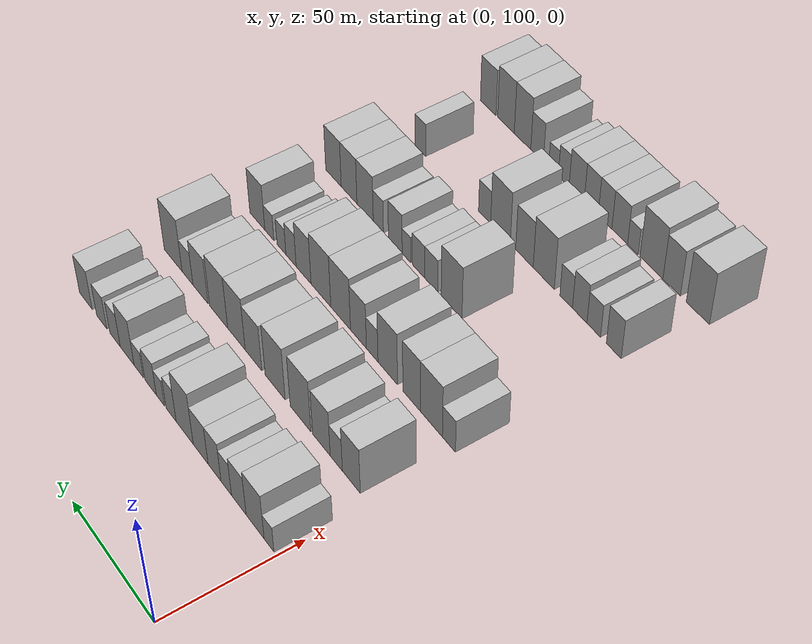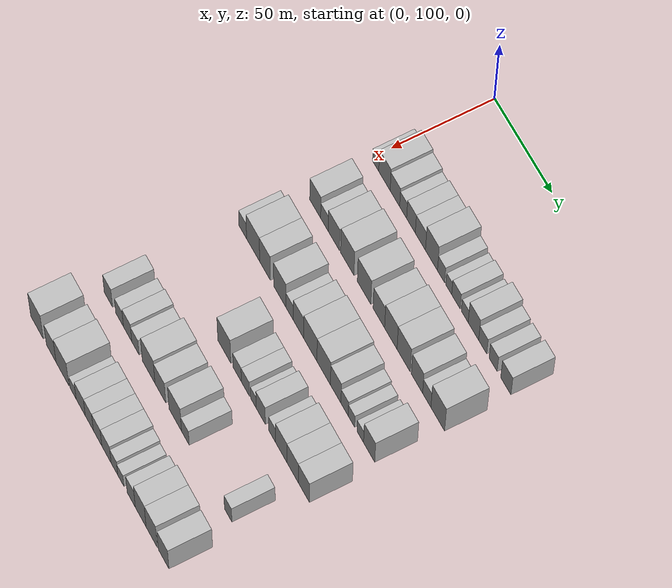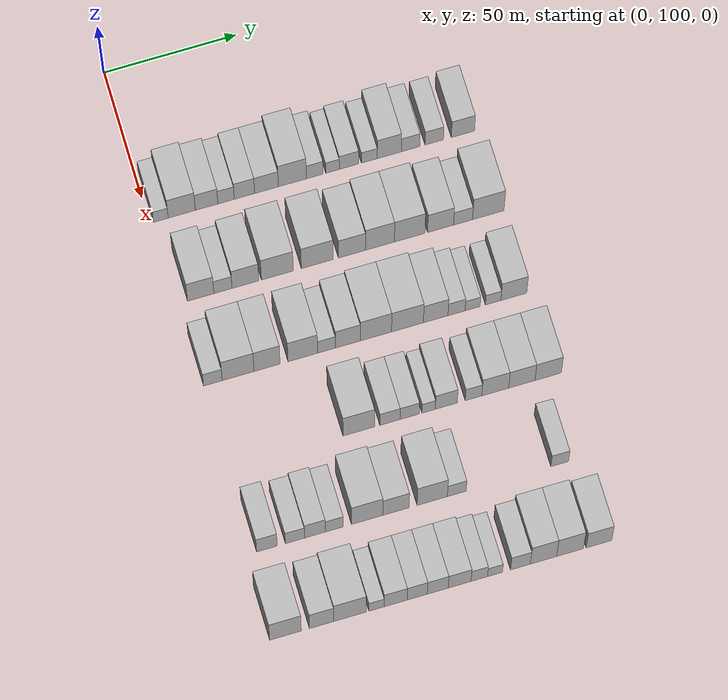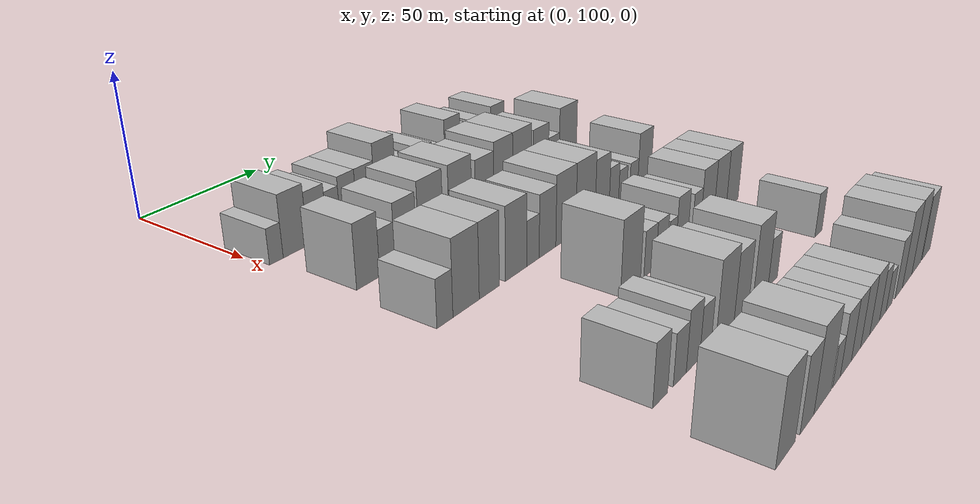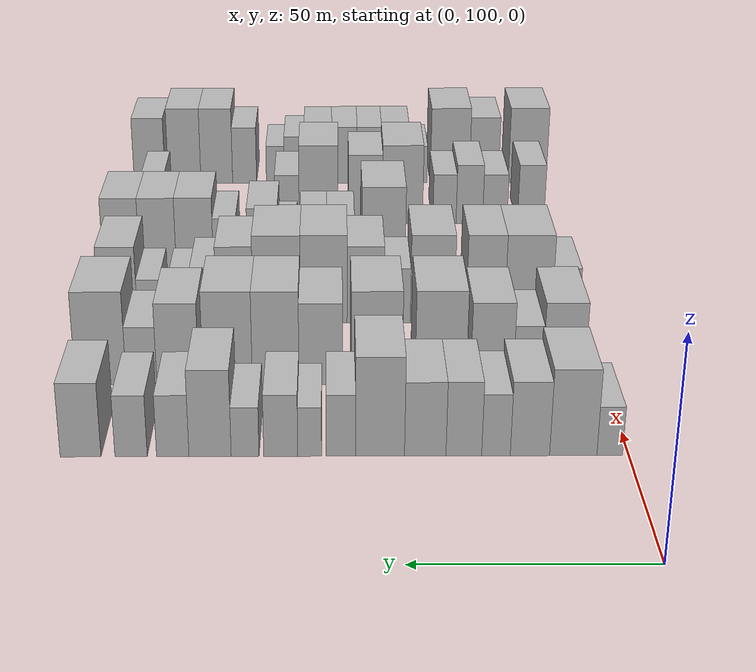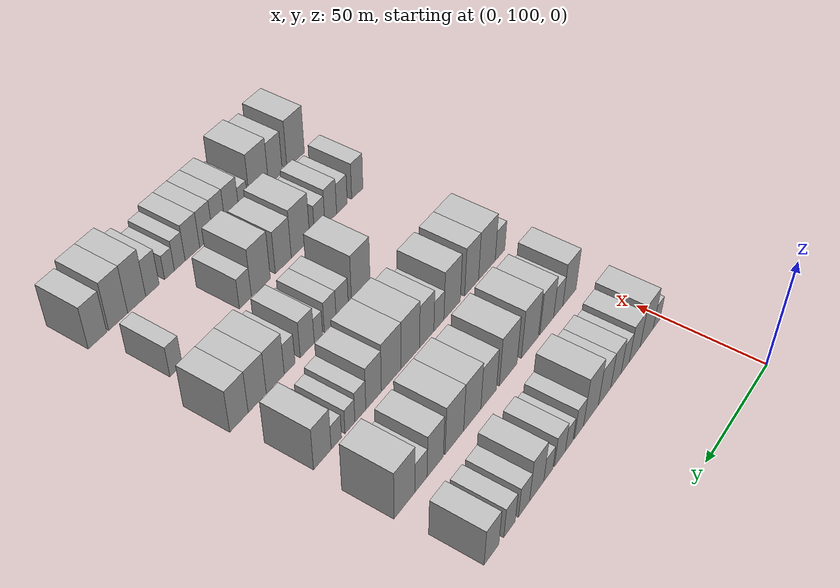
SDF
<sdf version="1.6">
 <world name="default">
  <model name="building_70">
   <static>1</static>
   <pose>50.0000 104.2377 0 0.000000 0.000000 0.000000</pose>
   <link name="link">
    <pose>0 0 6.00 0 0 0</pose>
    <collision name="collision"><geometry><box><size>20.0000 5.5310 12.0000</size></box></geometry></collision>
    <visual name="visual">
     <cast_shadows>0</cast_shadows>
     <geometry><box><size>20.0000 5.5310 12.0000</size></box></geometry>
     <material>
      <script>
       <uri>model://HANNAS_wall/materials/scripts</uri>
       <uri>model://HANNAS_wall/materials/textures</uri>
       <name>vrc/HANNAS_wall</name>
      </script>
     </material>
    </visual>
   </link>
  </model>
  <model name="building_71">
   <static>1</static>
   <pose>50.0000 112.1027 0 0.000000 0.000000 0.000000</pose>
   <link name="link">
    <pose>0 0 10.50 0 0 0</pose>
    <collision name="collision"><geometry><box><size>20.0000 10.1990 21.0000</size></box></geometry></collision>
    <visual name="visual">
     <cast_shadows>0</cast_shadows>
     <geometry><box><size>20.0000 10.1990 21.0000</size></box></geometry>
     <material>
      <script>
       <uri>model://HANNAS_wall/materials/scripts</uri>
       <uri>model://HANNAS_wall/materials/textures</uri>
       <name>vrc/HANNAS_wall</name>
      </script>
     </material>
    </visual>
   </link>
  </model>
  <model name="building_72">
   <static>1</static>
   <pose>50.0000 121.4422 0 0.000000 0.000000 0.000000</pose>
   <link name="link">
    <pose>0 0 9.00 0 0 0</pose>
    <collision name="collision"><geometry><box><size>20.0000 8.4801 18.0000</size></box></geometry></collision>
    <visual name="visual">
     <cast_shadows>0</cast_shadows>
     <geometry><box><size>20.0000 8.4801 18.0000</size></box></geometry>
     <material>
      <script>
       <uri>model://HANNAS_wall/materials/scripts</uri>
       <uri>model://HANNAS_wall/materials/textures</uri>
       <name>vrc/HANNAS_wall</name>
      </script>
     </material>
    </visual>
   </link>
  </model>
  <model name="building_73">
   <static>1</static>
   <pose>50.0000 128.7639 0 0.000000 0.000000 0.000000</pose>
   <link name="link">
    <pose>0 0 7.50 0 0 0</pose>
    <collision name="collision"><geometry><box><size>20.0000 6.1633 15.0000</size></box></geometry></collision>
    <visual name="visual">
     <cast_shadows>0</cast_shadows>
     <geometry><box><size>20.0000 6.1633 15.0000</size></box></geometry>
     <material>
      <script>
       <uri>model://HANNAS_wall/materials/scripts</uri>
       <uri>model://HANNAS_wall/materials/textures</uri>
       <name>vrc/HANNAS_wall</name>
      </script>
     </material>
    </visual>
   </link>
  </model>
  <model name="building_74">
   <static>1</static>
   <pose>50.0000 135.6921 0 0.000000 0.000000 0.000000</pose>
   <link name="link">
    <pose>0 0 9.00 0 0 0</pose>
    <collision name="collision"><geometry><box><size>20.0000 7.6930 18.0000</size></box></geometry></collision>
    <visual name="visual">
     <cast_shadows>0</cast_shadows>
     <geometry><box><size>20.0000 7.6930 18.0000</size></box></geometry>
     <material>
      <script>
       <uri>model://HANNAS_wall/materials/scripts</uri>
       <uri>model://HANNAS_wall/materials/textures</uri>
       <name>vrc/HANNAS_wall</name>
      </script>
     </material>
    </visual>
   </link>
  </model>
  <model name="building_75">
   <static>1</static>
   <pose>50.0000 144.0087 0 0.000000 0.000000 0.000000</pose>
   <link name="link">
    <pose>0 0 9.00 0 0 0</pose>
    <collision name="collision"><geometry><box><size>20.0000 8.9403 18.0000</size></box></geometry></collision>
    <visual name="visual">
     <cast_shadows>0</cast_shadows>
     <geometry><box><size>20.0000 8.9403 18.0000</size></box></geometry>
     <material>
      <script>
       <uri>model://HANNAS_wall/materials/scripts</uri>
       <uri>model://HANNAS_wall/materials/textures</uri>
       <name>vrc/HANNAS_wall</name>
      </script>
     </material>
    </visual>
   </link>
  </model>
  <model name="building_76">
   <static>1</static>
   <pose>50.0000 153.7544 0 0.000000 0.000000 0.000000</pose>
   <link name="link">
    <pose>0 0 12.00 0 0 0</pose>
    <collision name="collision"><geometry><box><size>20.0000 10.5511 24.0000</size></box></geometry></collision>
    <visual name="visual">
     <cast_shadows>0</cast_shadows>
     <geometry><box><size>20.0000 10.5511 24.0000</size></box></geometry>
     <material>
      <script>
       <uri>model://HANNAS_wall/materials/scripts</uri>
       <uri>model://HANNAS_wall/materials/textures</uri>
       <name>vrc/HANNAS_wall</name>
      </script>
     </material>
    </visual>
   </link>
  </model>
  <model name="building_77">
   <static>1</static>
   <pose>50.0000 162.1807 0 0.000000 0.000000 0.000000</pose>
   <link name="link">
    <pose>0 0 7.50 0 0 0</pose>
    <collision name="collision"><geometry><box><size>20.0000 6.3015 15.0000</size></box></geometry></collision>
    <visual name="visual">
     <cast_shadows>0</cast_shadows>
     <geometry><box><size>20.0000 6.3015 15.0000</size></box></geometry>
     <material>
      <script>
       <uri>model://HANNAS_wall/materials/scripts</uri>
       <uri>model://HANNAS_wall/materials/textures</uri>
       <name>vrc/HANNAS_wall</name>
      </script>
     </material>
    </visual>
   </link>
  </model>
  <model name="building_78">
   <static>1</static>
   <pose>50.0000 168.9005 0 0.000000 0.000000 0.000000</pose>
   <link name="link">
    <pose>0 0 6.00 0 0 0</pose>
    <collision name="collision"><geometry><box><size>20.0000 5.1382 12.0000</size></box></geometry></collision>
    <visual name="visual">
     <cast_shadows>0</cast_shadows>
     <geometry><box><size>20.0000 5.1382 12.0000</size></box></geometry>
     <material>
      <script>
       <uri>model://HANNAS_wall/materials/scripts</uri>
       <uri>model://HANNAS_wall/materials/textures</uri>
       <name>vrc/HANNAS_wall</name>
      </script>
     </material>
    </visual>
   </link>
  </model>
  <model name="building_79">
   <static>1</static>
   <pose>50.0000 175.1348 0 0.000000 0.000000 0.000000</pose>
   <link name="link">
    <pose>0 0 7.50 0 0 0</pose>
    <collision name="collision"><geometry><box><size>20.0000 7.3303 15.0000</size></box></geometry></collision>
    <visual name="visual">
     <cast_shadows>0</cast_shadows>
     <geometry><box><size>20.0000 7.3303 15.0000</size></box></geometry>
     <material>
      <script>
       <uri>model://HANNAS_wall/materials/scripts</uri>
       <uri>model://HANNAS_wall/materials/textures</uri>
       <name>vrc/HANNAS_wall</name>
      </script>
     </material>
    </visual>
   </link>
  </model>
  <model name="building_80">
   <static>1</static>
   <pose>50.0000 182.7957 0 0.000000 0.000000 0.000000</pose>
   <link name="link">
    <pose>0 0 6.00 0 0 0</pose>
    <collision name="collision"><geometry><box><size>20.0000 5.9916 12.0000</size></box></geometry></collision>
    <visual name="visual">
     <cast_shadows>0</cast_shadows>
     <geometry><box><size>20.0000 5.9916 12.0000</size></box></geometry>
     <material>
      <script>
       <uri>model://HANNAS_wall/materials/scripts</uri>
       <uri>model://HANNAS_wall/materials/textures</uri>
       <name>vrc/HANNAS_wall</name>
      </script>
     </material>
    </visual>
   </link>
  </model>
  <model name="building_81">
   <static>1</static>
   <pose>50.0000 190.3365 0 0.000000 0.000000 0.000000</pose>
   <link name="link">
    <pose>0 0 10.50 0 0 0</pose>
    <collision name="collision"><geometry><box><size>20.0000 9.0900 21.0000</size></box></geometry></collision>
    <visual name="visual">
     <cast_shadows>0</cast_shadows>
     <geometry><box><size>20.0000 9.0900 21.0000</size></box></geometry>
     <material>
      <script>
       <uri>model://HANNAS_wall/materials/scripts</uri>
       <uri>model://HANNAS_wall/materials/textures</uri>
       <name>vrc/HANNAS_wall</name>
      </script>
     </material>
    </visual>
   </link>
  </model>
  <model name="building_82">
   <static>1</static>
   <pose>50.0000 198.3667 0 0.000000 0.000000 0.000000</pose>
   <link name="link">
    <pose>0 0 7.50 0 0 0</pose>
    <collision name="collision"><geometry><box><size>20.0000 6.9704 15.0000</size></box></geometry></collision>
    <visual name="visual">
     <cast_shadows>0</cast_shadows>
     <geometry><box><size>20.0000 6.9704 15.0000</size></box></geometry>
     <material>
      <script>
       <uri>model://HANNAS_wall/materials/scripts</uri>
       <uri>model://HANNAS_wall/materials/textures</uri>
       <name>vrc/HANNAS_wall</name>
      </script>
     </material>
    </visual>
   </link>
  </model>
  <model name="building_83">
   <static>1</static>
   <pose>50.0000 207.3338 0 0.000000 0.000000 0.000000</pose>
   <link name="link">
    <pose>0 0 7.50 0 0 0</pose>
    <collision name="collision"><geometry><box><size>20.0000 6.9637 15.0000</size></box></geometry></collision>
    <visual name="visual">
     <cast_shadows>0</cast_shadows>
     <geometry><box><size>20.0000 6.9637 15.0000</size></box></geometry>
     <material>
      <script>
       <uri>model://HANNAS_wall/materials/scripts</uri>
       <uri>model://HANNAS_wall/materials/textures</uri>
       <name>vrc/HANNAS_wall</name>
      </script>
     </material>
    </visual>
   </link>
  </model>
  <model name="building_84">
   <static>1</static>
   <pose>50.0000 218.2044 0 0.000000 0.000000 0.000000</pose>
   <link name="link">
    <pose>0 0 9.00 0 0 0</pose>
    <collision name="collision"><geometry><box><size>20.0000 8.7774 18.0000</size></box></geometry></collision>
    <visual name="visual">
     <cast_shadows>0</cast_shadows>
     <geometry><box><size>20.0000 8.7774 18.0000</size></box></geometry>
     <material>
      <script>
       <uri>model://HANNAS_wall/materials/scripts</uri>
       <uri>model://HANNAS_wall/materials/textures</uri>
       <name>vrc/HANNAS_wall</name>
      </script>
     </material>
    </visual>
   </link>
  </model>
  <model name="building_190">
   <static>1</static>
   <pose>82.0000 109.9471 0 0.000000 0.000000 0.000000</pose>
   <link name="link">
    <pose>0 0 10.50 0 0 0</pose>
    <collision name="collision"><geometry><box><size>20.0000 9.8719 21.0000</size></box></geometry></collision>
    <visual name="visual">
     <cast_shadows>0</cast_shadows>
     <geometry><box><size>20.0000 9.8719 21.0000</size></box></geometry>
     <material>
      <script>
       <uri>model://HANNAS_wall/materials/scripts</uri>
       <uri>model://HANNAS_wall/materials/textures</uri>
       <name>vrc/HANNAS_wall</name>
      </script>
     </material>
    </visual>
   </link>
  </model>
  <model name="building_191">
   <static>1</static>
   <pose>82.0000 118.2887 0 0.000000 0.000000 0.000000</pose>
   <link name="link">
    <pose>0 0 7.50 0 0 0</pose>
    <collision name="collision"><geometry><box><size>20.0000 6.8113 15.0000</size></box></geometry></collision>
    <visual name="visual">
     <cast_shadows>0</cast_shadows>
     <geometry><box><size>20.0000 6.8113 15.0000</size></box></geometry>
     <material>
      <script>
       <uri>model://HANNAS_wall/materials/scripts</uri>
       <uri>model://HANNAS_wall/materials/textures</uri>
       <name>vrc/HANNAS_wall</name>
      </script>
     </material>
    </visual>
   </link>
  </model>
  <model name="building_192">
   <static>1</static>
   <pose>82.0000 126.6955 0 0.000000 0.000000 0.000000</pose>
   <link name="link">
    <pose>0 0 10.50 0 0 0</pose>
    <collision name="collision"><geometry><box><size>20.0000 10.0023 21.0000</size></box></geometry></collision>
    <visual name="visual">
     <cast_shadows>0</cast_shadows>
     <geometry><box><size>20.0000 10.0023 21.0000</size></box></geometry>
     <material>
      <script>
       <uri>model://HANNAS_wall/materials/scripts</uri>
       <uri>model://HANNAS_wall/materials/textures</uri>
       <name>vrc/HANNAS_wall</name>
      </script>
     </material>
    </visual>
   </link>
  </model>
  <model name="building_193">
   <static>1</static>
   <pose>82.0000 138.6816 0 0.000000 0.000000 0.000000</pose>
   <link name="link">
    <pose>0 0 12.00 0 0 0</pose>
    <collision name="collision"><geometry><box><size>20.0000 11.9700 24.0000</size></box></geometry></collision>
    <visual name="visual">
     <cast_shadows>0</cast_shadows>
     <geometry><box><size>20.0000 11.9700 24.0000</size></box></geometry>
     <material>
      <script>
       <uri>model://HANNAS_wall/materials/scripts</uri>
       <uri>model://HANNAS_wall/materials/textures</uri>
       <name>vrc/HANNAS_wall</name>
      </script>
     </material>
    </visual>
   </link>
  </model>
  <model name="building_194">
   <static>1</static>
   <pose>82.0000 153.6237 0 0.000000 0.000000 0.000000</pose>
   <link name="link">
    <pose>0 0 12.00 0 0 0</pose>
    <collision name="collision"><geometry><box><size>20.0000 11.9142 24.0000</size></box></geometry></collision>
    <visual name="visual">
     <cast_shadows>0</cast_shadows>
     <geometry><box><size>20.0000 11.9142 24.0000</size></box></geometry>
     <material>
      <script>
       <uri>model://HANNAS_wall/materials/scripts</uri>
       <uri>model://HANNAS_wall/materials/textures</uri>
       <name>vrc/HANNAS_wall</name>
      </script>
     </material>
    </visual>
   </link>
  </model>
  <model name="building_195">
   <static>1</static>
   <pose>82.0000 166.6712 0 0.000000 0.000000 0.000000</pose>
   <link name="link">
    <pose>0 0 10.50 0 0 0</pose>
    <collision name="collision"><geometry><box><size>20.0000 10.1808 21.0000</size></box></geometry></collision>
    <visual name="visual">
     <cast_shadows>0</cast_shadows>
     <geometry><box><size>20.0000 10.1808 21.0000</size></box></geometry>
     <material>
      <script>
       <uri>model://HANNAS_wall/materials/scripts</uri>
       <uri>model://HANNAS_wall/materials/textures</uri>
       <name>vrc/HANNAS_wall</name>
      </script>
     </material>
    </visual>
   </link>
  </model>
  <model name="building_196">
   <static>1</static>
   <pose>82.0000 177.2109 0 0.000000 0.000000 0.000000</pose>
   <link name="link">
    <pose>0 0 12.00 0 0 0</pose>
    <collision name="collision"><geometry><box><size>20.0000 10.8985 24.0000</size></box></geometry></collision>
    <visual name="visual">
     <cast_shadows>0</cast_shadows>
     <geometry><box><size>20.0000 10.8985 24.0000</size></box></geometry>
     <material>
      <script>
       <uri>model://HANNAS_wall/materials/scripts</uri>
       <uri>model://HANNAS_wall/materials/textures</uri>
       <name>vrc/HANNAS_wall</name>
      </script>
     </material>
    </visual>
   </link>
  </model>
  <model name="building_197">
   <static>1</static>
   <pose>82.0000 188.4048 0 0.000000 0.000000 0.000000</pose>
   <link name="link">
    <pose>0 0 12.00 0 0 0</pose>
    <collision name="collision"><geometry><box><size>20.0000 11.4892 24.0000</size></box></geometry></collision>
    <visual name="visual">
     <cast_shadows>0</cast_shadows>
     <geometry><box><size>20.0000 11.4892 24.0000</size></box></geometry>
     <material>
      <script>
       <uri>model://HANNAS_wall/materials/scripts</uri>
       <uri>model://HANNAS_wall/materials/textures</uri>
       <name>vrc/HANNAS_wall</name>
      </script>
     </material>
    </visual>
   </link>
  </model>
  <model name="building_198">
   <static>1</static>
   <pose>82.0000 200.0547 0 0.000000 0.000000 0.000000</pose>
   <link name="link">
    <pose>0 0 10.50 0 0 0</pose>
    <collision name="collision"><geometry><box><size>20.0000 9.8107 21.0000</size></box></geometry></collision>
    <visual name="visual">
     <cast_shadows>0</cast_shadows>
     <geometry><box><size>20.0000 9.8107 21.0000</size></box></geometry>
     <material>
      <script>
       <uri>model://HANNAS_wall/materials/scripts</uri>
       <uri>model://HANNAS_wall/materials/textures</uri>
       <name>vrc/HANNAS_wall</name>
      </script>
     </material>
    </visual>
   </link>
  </model>
  <model name="building_199">
   <static>1</static>
   <pose>82.0000 208.5327 0 0.000000 0.000000 0.000000</pose>
   <link name="link">
    <pose>0 0 7.50 0 0 0</pose>
    <collision name="collision"><geometry><box><size>20.0000 7.1451 15.0000</size></box></geometry></collision>
    <visual name="visual">
     <cast_shadows>0</cast_shadows>
     <geometry><box><size>20.0000 7.1451 15.0000</size></box></geometry>
     <material>
      <script>
       <uri>model://HANNAS_wall/materials/scripts</uri>
       <uri>model://HANNAS_wall/materials/textures</uri>
       <name>vrc/HANNAS_wall</name>
      </script>
     </material>
    </visual>
   </link>
  </model>
  <model name="building_200">
   <static>1</static>
   <pose>82.0000 218.0332 0 0.000000 0.000000 0.000000</pose>
   <link name="link">
    <pose>0 0 12.00 0 0 0</pose>
    <collision name="collision"><geometry><box><size>20.0000 11.8559 24.0000</size></box></geometry></collision>
    <visual name="visual">
     <cast_shadows>0</cast_shadows>
     <geometry><box><size>20.0000 11.8559 24.0000</size></box></geometry>
     <material>
      <script>
       <uri>model://HANNAS_wall/materials/scripts</uri>
       <uri>model://HANNAS_wall/materials/textures</uri>
       <name>vrc/HANNAS_wall</name>
      </script>
     </material>
    </visual>
   </link>
  </model>
  <model name="building_306">
   <static>1</static>
   <pose>114.0000 105.2010 0 0.000000 0.000000 0.000000</pose>
   <link name="link">
    <pose>0 0 7.50 0 0 0</pose>
    <collision name="collision"><geometry><box><size>20.0000 6.9410 15.0000</size></box></geometry></collision>
    <visual name="visual">
     <cast_shadows>0</cast_shadows>
     <geometry><box><size>20.0000 6.9410 15.0000</size></box></geometry>
     <material>
      <script>
       <uri>model://HANNAS_wall/materials/scripts</uri>
       <uri>model://HANNAS_wall/materials/textures</uri>
       <name>vrc/HANNAS_wall</name>
      </script>
     </material>
    </visual>
   </link>
  </model>
  <model name="building_307">
   <static>1</static>
   <pose>114.0000 114.6307 0 0.000000 0.000000 0.000000</pose>
   <link name="link">
    <pose>0 0 12.00 0 0 0</pose>
    <collision name="collision"><geometry><box><size>20.0000 11.9185 24.0000</size></box></geometry></collision>
    <visual name="visual">
     <cast_shadows>0</cast_shadows>
     <geometry><box><size>20.0000 11.9185 24.0000</size></box></geometry>
     <material>
      <script>
       <uri>model://HANNAS_wall/materials/scripts</uri>
       <uri>model://HANNAS_wall/materials/textures</uri>
       <name>vrc/HANNAS_wall</name>
      </script>
     </material>
    </visual>
   </link>
  </model>
  <model name="building_308">
   <static>1</static>
   <pose>114.0000 125.4257 0 0.000000 0.000000 0.000000</pose>
   <link name="link">
    <pose>0 0 12.00 0 0 0</pose>
    <collision name="collision"><geometry><box><size>20.0000 9.6714 24.0000</size></box></geometry></collision>
    <visual name="visual">
     <cast_shadows>0</cast_shadows>
     <geometry><box><size>20.0000 9.6714 24.0000</size></box></geometry>
     <material>
      <script>
       <uri>model://HANNAS_wall/materials/scripts</uri>
       <uri>model://HANNAS_wall/materials/textures</uri>
       <name>vrc/HANNAS_wall</name>
      </script>
     </material>
    </visual>
   </link>
  </model>
  <model name="building_309">
   <static>1</static>
   <pose>114.0000 138.7803 0 0.000000 0.000000 0.000000</pose>
   <link name="link">
    <pose>0 0 12.00 0 0 0</pose>
    <collision name="collision"><geometry><box><size>20.0000 11.0379 24.0000</size></box></geometry></collision>
    <visual name="visual">
     <cast_shadows>0</cast_shadows>
     <geometry><box><size>20.0000 11.0379 24.0000</size></box></geometry>
     <material>
      <script>
       <uri>model://HANNAS_wall/materials/scripts</uri>
       <uri>model://HANNAS_wall/materials/textures</uri>
       <name>vrc/HANNAS_wall</name>
      </script>
     </material>
    </visual>
   </link>
  </model>
  <model name="building_310">
   <static>1</static>
   <pose>114.0000 147.6210 0 0.000000 0.000000 0.000000</pose>
   <link name="link">
    <pose>0 0 7.50 0 0 0</pose>
    <collision name="collision"><geometry><box><size>20.0000 6.6434 15.0000</size></box></geometry></collision>
    <visual name="visual">
     <cast_shadows>0</cast_shadows>
     <geometry><box><size>20.0000 6.6434 15.0000</size></box></geometry>
     <material>
      <script>
       <uri>model://HANNAS_wall/materials/scripts</uri>
       <uri>model://HANNAS_wall/materials/textures</uri>
       <name>vrc/HANNAS_wall</name>
      </script>
     </material>
    </visual>
   </link>
  </model>
  <model name="building_311">
   <static>1</static>
   <pose>114.0000 155.5889 0 0.000000 0.000000 0.000000</pose>
   <link name="link">
    <pose>0 0 10.50 0 0 0</pose>
    <collision name="collision"><geometry><box><size>20.0000 9.2924 21.0000</size></box></geometry></collision>
    <visual name="visual">
     <cast_shadows>0</cast_shadows>
     <geometry><box><size>20.0000 9.2924 21.0000</size></box></geometry>
     <material>
      <script>
       <uri>model://HANNAS_wall/materials/scripts</uri>
       <uri>model://HANNAS_wall/materials/textures</uri>
       <name>vrc/HANNAS_wall</name>
      </script>
     </material>
    </visual>
   </link>
  </model>
  <model name="building_312">
   <static>1</static>
   <pose>114.0000 166.0883 0 0.000000 0.000000 0.000000</pose>
   <link name="link">
    <pose>0 0 12.00 0 0 0</pose>
    <collision name="collision"><geometry><box><size>20.0000 11.7065 24.0000</size></box></geometry></collision>
    <visual name="visual">
     <cast_shadows>0</cast_shadows>
     <geometry><box><size>20.0000 11.7065 24.0000</size></box></geometry>
     <material>
      <script>
       <uri>model://HANNAS_wall/materials/scripts</uri>
       <uri>model://HANNAS_wall/materials/textures</uri>
       <name>vrc/HANNAS_wall</name>
      </script>
     </material>
    </visual>
   </link>
  </model>
  <model name="building_313">
   <static>1</static>
   <pose>114.0000 177.9226 0 0.000000 0.000000 0.000000</pose>
   <link name="link">
    <pose>0 0 12.00 0 0 0</pose>
    <collision name="collision"><geometry><box><size>20.0000 11.9619 24.0000</size></box></geometry></collision>
    <visual name="visual">
     <cast_shadows>0</cast_shadows>
     <geometry><box><size>20.0000 11.9619 24.0000</size></box></geometry>
     <material>
      <script>
       <uri>model://HANNAS_wall/materials/scripts</uri>
       <uri>model://HANNAS_wall/materials/textures</uri>
       <name>vrc/HANNAS_wall</name>
      </script>
     </material>
    </visual>
   </link>
  </model>
  <model name="building_314">
   <static>1</static>
   <pose>114.0000 188.5191 0 0.000000 0.000000 0.000000</pose>
   <link name="link">
    <pose>0 0 10.50 0 0 0</pose>
    <collision name="collision"><geometry><box><size>20.0000 9.2311 21.0000</size></box></geometry></collision>
    <visual name="visual">
     <cast_shadows>0</cast_shadows>
     <geometry><box><size>20.0000 9.2311 21.0000</size></box></geometry>
     <material>
      <script>
       <uri>model://HANNAS_wall/materials/scripts</uri>
       <uri>model://HANNAS_wall/materials/textures</uri>
       <name>vrc/HANNAS_wall</name>
      </script>
     </material>
    </visual>
   </link>
  </model>
  <model name="building_315">
   <static>1</static>
   <pose>114.0000 196.3335 0 0.000000 0.000000 0.000000</pose>
   <link name="link">
    <pose>0 0 7.50 0 0 0</pose>
    <collision name="collision"><geometry><box><size>20.0000 6.3978 15.0000</size></box></geometry></collision>
    <visual name="visual">
     <cast_shadows>0</cast_shadows>
     <geometry><box><size>20.0000 6.3978 15.0000</size></box></geometry>
     <material>
      <script>
       <uri>model://HANNAS_wall/materials/scripts</uri>
       <uri>model://HANNAS_wall/materials/textures</uri>
       <name>vrc/HANNAS_wall</name>
      </script>
     </material>
    </visual>
   </link>
  </model>
  <model name="building_316">
   <static>1</static>
   <pose>114.0000 202.3570 0 0.000000 0.000000 0.000000</pose>
   <link name="link">
    <pose>0 0 6.00 0 0 0</pose>
    <collision name="collision"><geometry><box><size>20.0000 5.6490 12.0000</size></box></geometry></collision>
    <visual name="visual">
     <cast_shadows>0</cast_shadows>
     <geometry><box><size>20.0000 5.6490 12.0000</size></box></geometry>
     <material>
      <script>
       <uri>model://HANNAS_wall/materials/scripts</uri>
       <uri>model://HANNAS_wall/materials/textures</uri>
       <name>vrc/HANNAS_wall</name>
      </script>
     </material>
    </visual>
   </link>
  </model>
  <model name="building_317">
   <static>1</static>
   <pose>114.0000 210.0790 0 0.000000 0.000000 0.000000</pose>
   <link name="link">
    <pose>0 0 6.00 0 0 0</pose>
    <collision name="collision"><geometry><box><size>20.0000 5.7951 12.0000</size></box></geometry></collision>
    <visual name="visual">
     <cast_shadows>0</cast_shadows>
     <geometry><box><size>20.0000 5.7951 12.0000</size></box></geometry>
     <material>
      <script>
       <uri>model://HANNAS_wall/materials/scripts</uri>
       <uri>model://HANNAS_wall/materials/textures</uri>
       <name>vrc/HANNAS_wall</name>
      </script>
     </material>
    </visual>
   </link>
  </model>
  <model name="building_318">
   <static>1</static>
   <pose>114.0000 217.8367 0 0.000000 0.000000 0.000000</pose>
   <link name="link">
    <pose>0 0 10.50 0 0 0</pose>
    <collision name="collision"><geometry><box><size>20.0000 9.7202 21.0000</size></box></geometry></collision>
    <visual name="visual">
     <cast_shadows>0</cast_shadows>
     <geometry><box><size>20.0000 9.7202 21.0000</size></box></geometry>
     <material>
      <script>
       <uri>model://HANNAS_wall/materials/scripts</uri>
       <uri>model://HANNAS_wall/materials/textures</uri>
       <name>vrc/HANNAS_wall</name>
      </script>
     </material>
    </visual>
   </link>
  </model>
  <model name="building_428">
   <static>1</static>
   <pose>146.0000 150.1026 0 0.000000 0.000000 0.000000</pose>
   <link name="link">
    <pose>0 0 12.00 0 0 0</pose>
    <collision name="collision"><geometry><box><size>20.0000 11.7402 24.0000</size></box></geometry></collision>
    <visual name="visual">
     <cast_shadows>0</cast_shadows>
     <geometry><box><size>20.0000 11.7402 24.0000</size></box></geometry>
     <material>
      <script>
       <uri>model://HANNAS_wall/materials/scripts</uri>
       <uri>model://HANNAS_wall/materials/textures</uri>
       <name>vrc/HANNAS_wall</name>
      </script>
     </material>
    </visual>
   </link>
  </model>
  <model name="building_429">
   <static>1</static>
   <pose>146.0000 161.7214 0 0.000000 0.000000 0.000000</pose>
   <link name="link">
    <pose>0 0 7.50 0 0 0</pose>
    <collision name="collision"><geometry><box><size>20.0000 7.4975 15.0000</size></box></geometry></collision>
    <visual name="visual">
     <cast_shadows>0</cast_shadows>
     <geometry><box><size>20.0000 7.4975 15.0000</size></box></geometry>
     <material>
      <script>
       <uri>model://HANNAS_wall/materials/scripts</uri>
       <uri>model://HANNAS_wall/materials/textures</uri>
       <name>vrc/HANNAS_wall</name>
      </script>
     </material>
    </visual>
   </link>
  </model>
  <model name="building_430">
   <static>1</static>
   <pose>146.0000 169.0650 0 0.000000 0.000000 0.000000</pose>
   <link name="link">
    <pose>0 0 7.50 0 0 0</pose>
    <collision name="collision"><geometry><box><size>20.0000 7.1895 15.0000</size></box></geometry></collision>
    <visual name="visual">
     <cast_shadows>0</cast_shadows>
     <geometry><box><size>20.0000 7.1895 15.0000</size></box></geometry>
     <material>
      <script>
       <uri>model://HANNAS_wall/materials/scripts</uri>
       <uri>model://HANNAS_wall/materials/textures</uri>
       <name>vrc/HANNAS_wall</name>
      </script>
     </material>
    </visual>
   </link>
  </model>
  <model name="building_431">
   <static>1</static>
   <pose>146.0000 176.1539 0 0.000000 0.000000 0.000000</pose>
   <link name="link">
    <pose>0 0 6.00 0 0 0</pose>
    <collision name="collision"><geometry><box><size>20.0000 4.9883 12.0000</size></box></geometry></collision>
    <visual name="visual">
     <cast_shadows>0</cast_shadows>
     <geometry><box><size>20.0000 4.9883 12.0000</size></box></geometry>
     <material>
      <script>
       <uri>model://HANNAS_wall/materials/scripts</uri>
       <uri>model://HANNAS_wall/materials/textures</uri>
       <name>vrc/HANNAS_wall</name>
      </script>
     </material>
    </visual>
   </link>
  </model>
  <model name="building_432">
   <static>1</static>
   <pose>146.0000 182.7481 0 0.000000 0.000000 0.000000</pose>
   <link name="link">
    <pose>0 0 9.00 0 0 0</pose>
    <collision name="collision"><geometry><box><size>20.0000 8.2001 18.0000</size></box></geometry></collision>
    <visual name="visual">
     <cast_shadows>0</cast_shadows>
     <geometry><box><size>20.0000 8.2001 18.0000</size></box></geometry>
     <material>
      <script>
       <uri>model://HANNAS_wall/materials/scripts</uri>
       <uri>model://HANNAS_wall/materials/textures</uri>
       <name>vrc/HANNAS_wall</name>
      </script>
     </material>
    </visual>
   </link>
  </model>
  <model name="building_433">
   <static>1</static>
   <pose>146.0000 192.9391 0 0.000000 0.000000 0.000000</pose>
   <link name="link">
    <pose>0 0 7.50 0 0 0</pose>
    <collision name="collision"><geometry><box><size>20.0000 6.1818 15.0000</size></box></geometry></collision>
    <visual name="visual">
     <cast_shadows>0</cast_shadows>
     <geometry><box><size>20.0000 6.1818 15.0000</size></box></geometry>
     <material>
      <script>
       <uri>model://HANNAS_wall/materials/scripts</uri>
       <uri>model://HANNAS_wall/materials/textures</uri>
       <name>vrc/HANNAS_wall</name>
      </script>
     </material>
    </visual>
   </link>
  </model>
  <model name="building_434">
   <static>1</static>
   <pose>146.0000 201.0506 0 0.000000 0.000000 0.000000</pose>
   <link name="link">
    <pose>0 0 10.50 0 0 0</pose>
    <collision name="collision"><geometry><box><size>20.0000 10.0413 21.0000</size></box></geometry></collision>
    <visual name="visual">
     <cast_shadows>0</cast_shadows>
     <geometry><box><size>20.0000 10.0413 21.0000</size></box></geometry>
     <material>
      <script>
       <uri>model://HANNAS_wall/materials/scripts</uri>
       <uri>model://HANNAS_wall/materials/textures</uri>
       <name>vrc/HANNAS_wall</name>
      </script>
     </material>
    </visual>
   </link>
  </model>
  <model name="building_435">
   <static>1</static>
   <pose>146.0000 211.0124 0 0.000000 0.000000 0.000000</pose>
   <link name="link">
    <pose>0 0 10.50 0 0 0</pose>
    <collision name="collision"><geometry><box><size>20.0000 9.8824 21.0000</size></box></geometry></collision>
    <visual name="visual">
     <cast_shadows>0</cast_shadows>
     <geometry><box><size>20.0000 9.8824 21.0000</size></box></geometry>
     <material>
      <script>
       <uri>model://HANNAS_wall/materials/scripts</uri>
       <uri>model://HANNAS_wall/materials/textures</uri>
       <name>vrc/HANNAS_wall</name>
      </script>
     </material>
    </visual>
   </link>
  </model>
  <model name="building_436">
   <static>1</static>
   <pose>146.0000 220.8661 0 0.000000 0.000000 0.000000</pose>
   <link name="link">
    <pose>0 0 10.50 0 0 0</pose>
    <collision name="collision"><geometry><box><size>20.0000 9.8248 21.0000</size></box></geometry></collision>
    <visual name="visual">
     <cast_shadows>0</cast_shadows>
     <geometry><box><size>20.0000 9.8248 21.0000</size></box></geometry>
     <material>
      <script>
       <uri>model://HANNAS_wall/materials/scripts</uri>
       <uri>model://HANNAS_wall/materials/textures</uri>
       <name>vrc/HANNAS_wall</name>
      </script>
     </material>
    </visual>
   </link>
  </model>
  <model name="building_547">
   <static>1</static>
   <pose>178.0000 106.5735 0 0.000000 0.000000 0.000000</pose>
   <link name="link">
    <pose>0 0 9.00 0 0 0</pose>
    <collision name="collision"><geometry><box><size>20.0000 7.6171 18.0000</size></box></geometry></collision>
    <visual name="visual">
     <cast_shadows>0</cast_shadows>
     <geometry><box><size>20.0000 7.6171 18.0000</size></box></geometry>
     <material>
      <script>
       <uri>model://HANNAS_wall/materials/scripts</uri>
       <uri>model://HANNAS_wall/materials/textures</uri>
       <name>vrc/HANNAS_wall</name>
      </script>
     </material>
    </visual>
   </link>
  </model>
  <model name="building_548">
   <static>1</static>
   <pose>178.0000 116.9295 0 0.000000 0.000000 0.000000</pose>
   <link name="link">
    <pose>0 0 7.50 0 0 0</pose>
    <collision name="collision"><geometry><box><size>20.0000 7.0949 15.0000</size></box></geometry></collision>
    <visual name="visual">
     <cast_shadows>0</cast_shadows>
     <geometry><box><size>20.0000 7.0949 15.0000</size></box></geometry>
     <material>
      <script>
       <uri>model://HANNAS_wall/materials/scripts</uri>
       <uri>model://HANNAS_wall/materials/textures</uri>
       <name>vrc/HANNAS_wall</name>
      </script>
     </material>
    </visual>
   </link>
  </model>
  <model name="building_549">
   <static>1</static>
   <pose>178.0000 124.3090 0 0.000000 0.000000 0.000000</pose>
   <link name="link">
    <pose>0 0 9.00 0 0 0</pose>
    <collision name="collision"><geometry><box><size>20.0000 7.6640 18.0000</size></box></geometry></collision>
    <visual name="visual">
     <cast_shadows>0</cast_shadows>
     <geometry><box><size>20.0000 7.6640 18.0000</size></box></geometry>
     <material>
      <script>
       <uri>model://HANNAS_wall/materials/scripts</uri>
       <uri>model://HANNAS_wall/materials/textures</uri>
       <name>vrc/HANNAS_wall</name>
      </script>
     </material>
    </visual>
   </link>
  </model>
  <model name="building_550">
   <static>1</static>
   <pose>178.0000 131.4963 0 0.000000 0.000000 0.000000</pose>
   <link name="link">
    <pose>0 0 7.50 0 0 0</pose>
    <collision name="collision"><geometry><box><size>20.0000 6.7108 15.0000</size></box></geometry></collision>
    <visual name="visual">
     <cast_shadows>0</cast_shadows>
     <geometry><box><size>20.0000 6.7108 15.0000</size></box></geometry>
     <material>
      <script>
       <uri>model://HANNAS_wall/materials/scripts</uri>
       <uri>model://HANNAS_wall/materials/textures</uri>
       <name>vrc/HANNAS_wall</name>
      </script>
     </material>
    </visual>
   </link>
  </model>
  <model name="building_551">
   <static>1</static>
   <pose>178.0000 143.6427 0 0.000000 0.000000 0.000000</pose>
   <link name="link">
    <pose>0 0 12.00 0 0 0</pose>
    <collision name="collision"><geometry><box><size>20.0000 11.5820 24.0000</size></box></geometry></collision>
    <visual name="visual">
     <cast_shadows>0</cast_shadows>
     <geometry><box><size>20.0000 11.5820 24.0000</size></box></geometry>
     <material>
      <script>
       <uri>model://HANNAS_wall/materials/scripts</uri>
       <uri>model://HANNAS_wall/materials/textures</uri>
       <name>vrc/HANNAS_wall</name>
      </script>
     </material>
    </visual>
   </link>
  </model>
  <model name="building_552">
   <static>1</static>
   <pose>178.0000 154.3191 0 0.000000 0.000000 0.000000</pose>
   <link name="link">
    <pose>0 0 10.50 0 0 0</pose>
    <collision name="collision"><geometry><box><size>20.0000 9.7709 21.0000</size></box></geometry></collision>
    <visual name="visual">
     <cast_shadows>0</cast_shadows>
     <geometry><box><size>20.0000 9.7709 21.0000</size></box></geometry>
     <material>
      <script>
       <uri>model://HANNAS_wall/materials/scripts</uri>
       <uri>model://HANNAS_wall/materials/textures</uri>
       <name>vrc/HANNAS_wall</name>
      </script>
     </material>
    </visual>
   </link>
  </model>
  <model name="building_553">
   <static>1</static>
   <pose>178.0000 167.8184 0 0.000000 0.000000 0.000000</pose>
   <link name="link">
    <pose>0 0 12.00 0 0 0</pose>
    <collision name="collision"><geometry><box><size>20.0000 11.2276 24.0000</size></box></geometry></collision>
    <visual name="visual">
     <cast_shadows>0</cast_shadows>
     <geometry><box><size>20.0000 11.2276 24.0000</size></box></geometry>
     <material>
      <script>
       <uri>model://HANNAS_wall/materials/scripts</uri>
       <uri>model://HANNAS_wall/materials/textures</uri>
       <name>vrc/HANNAS_wall</name>
      </script>
     </material>
    </visual>
   </link>
  </model>
  <model name="building_554">
   <static>1</static>
   <pose>178.0000 176.9302 0 0.000000 0.000000 0.000000</pose>
   <link name="link">
    <pose>0 0 7.50 0 0 0</pose>
    <collision name="collision"><geometry><box><size>20.0000 6.9960 15.0000</size></box></geometry></collision>
    <visual name="visual">
     <cast_shadows>0</cast_shadows>
     <geometry><box><size>20.0000 6.9960 15.0000</size></box></geometry>
     <material>
      <script>
       <uri>model://HANNAS_wall/materials/scripts</uri>
       <uri>model://HANNAS_wall/materials/textures</uri>
       <name>vrc/HANNAS_wall</name>
      </script>
     </material>
    </visual>
   </link>
  </model>
  <model name="building_555">
   <static>1</static>
   <pose>178.0000 215.2594 0 0.000000 0.000000 0.000000</pose>
   <link name="link">
    <pose>0 0 7.50 0 0 0</pose>
    <collision name="collision"><geometry><box><size>20.0000 6.5541 15.0000</size></box></geometry></collision>
    <visual name="visual">
     <cast_shadows>0</cast_shadows>
     <geometry><box><size>20.0000 6.5541 15.0000</size></box></geometry>
     <material>
      <script>
       <uri>model://HANNAS_wall/materials/scripts</uri>
       <uri>model://HANNAS_wall/materials/textures</uri>
       <name>vrc/HANNAS_wall</name>
      </script>
     </material>
    </visual>
   </link>
  </model>
  <model name="building_662">
   <static>1</static>
   <pose>210.0000 103.9830 0 0.000000 0.000000 0.000000</pose>
   <link name="link">
    <pose>0 0 12.00 0 0 0</pose>
    <collision name="collision"><geometry><box><size>20.0000 11.6423 24.0000</size></box></geometry></collision>
    <visual name="visual">
     <cast_shadows>0</cast_shadows>
     <geometry><box><size>20.0000 11.6423 24.0000</size></box></geometry>
     <material>
      <script>
       <uri>model://HANNAS_wall/materials/scripts</uri>
       <uri>model://HANNAS_wall/materials/textures</uri>
       <name>vrc/HANNAS_wall</name>
      </script>
     </material>
    </visual>
   </link>
  </model>
  <model name="building_663">
   <static>1</static>
   <pose>210.0000 117.2865 0 0.000000 0.000000 0.000000</pose>
   <link name="link">
    <pose>0 0 10.50 0 0 0</pose>
    <collision name="collision"><geometry><box><size>20.0000 8.9646 21.0000</size></box></geometry></collision>
    <visual name="visual">
     <cast_shadows>0</cast_shadows>
     <geometry><box><size>20.0000 8.9646 21.0000</size></box></geometry>
     <material>
      <script>
       <uri>model://HANNAS_wall/materials/scripts</uri>
       <uri>model://HANNAS_wall/materials/textures</uri>
       <name>vrc/HANNAS_wall</name>
      </script>
     </material>
    </visual>
   </link>
  </model>
  <model name="building_664">
   <static>1</static>
   <pose>210.0000 127.7575 0 0.000000 0.000000 0.000000</pose>
   <link name="link">
    <pose>0 0 12.00 0 0 0</pose>
    <collision name="collision"><geometry><box><size>20.0000 11.9773 24.0000</size></box></geometry></collision>
    <visual name="visual">
     <cast_shadows>0</cast_shadows>
     <geometry><box><size>20.0000 11.9773 24.0000</size></box></geometry>
     <material>
      <script>
       <uri>model://HANNAS_wall/materials/scripts</uri>
       <uri>model://HANNAS_wall/materials/textures</uri>
       <name>vrc/HANNAS_wall</name>
      </script>
     </material>
    </visual>
   </link>
  </model>
  <model name="building_665">
   <static>1</static>
   <pose>210.0000 137.5664 0 0.000000 0.000000 0.000000</pose>
   <link name="link">
    <pose>0 0 6.00 0 0 0</pose>
    <collision name="collision"><geometry><box><size>20.0000 5.6405 12.0000</size></box></geometry></collision>
    <visual name="visual">
     <cast_shadows>0</cast_shadows>
     <geometry><box><size>20.0000 5.6405 12.0000</size></box></geometry>
     <material>
      <script>
       <uri>model://HANNAS_wall/materials/scripts</uri>
       <uri>model://HANNAS_wall/materials/textures</uri>
       <name>vrc/HANNAS_wall</name>
      </script>
     </material>
    </visual>
   </link>
  </model>
  <model name="building_666">
   <static>1</static>
   <pose>210.0000 144.6204 0 0.000000 0.000000 0.000000</pose>
   <link name="link">
    <pose>0 0 9.00 0 0 0</pose>
    <collision name="collision"><geometry><box><size>20.0000 8.4676 18.0000</size></box></geometry></collision>
    <visual name="visual">
     <cast_shadows>0</cast_shadows>
     <geometry><box><size>20.0000 8.4676 18.0000</size></box></geometry>
     <material>
      <script>
       <uri>model://HANNAS_wall/materials/scripts</uri>
       <uri>model://HANNAS_wall/materials/textures</uri>
       <name>vrc/HANNAS_wall</name>
      </script>
     </material>
    </visual>
   </link>
  </model>
  <model name="building_667">
   <static>1</static>
   <pose>210.0000 152.5769 0 0.000000 0.000000 0.000000</pose>
   <link name="link">
    <pose>0 0 9.00 0 0 0</pose>
    <collision name="collision"><geometry><box><size>20.0000 7.4455 18.0000</size></box></geometry></collision>
    <visual name="visual">
     <cast_shadows>0</cast_shadows>
     <geometry><box><size>20.0000 7.4455 18.0000</size></box></geometry>
     <material>
      <script>
       <uri>model://HANNAS_wall/materials/scripts</uri>
       <uri>model://HANNAS_wall/materials/textures</uri>
       <name>vrc/HANNAS_wall</name>
      </script>
     </material>
    </visual>
   </link>
  </model>
  <model name="building_668">
   <static>1</static>
   <pose>210.0000 160.1619 0 0.000000 0.000000 0.000000</pose>
   <link name="link">
    <pose>0 0 9.00 0 0 0</pose>
    <collision name="collision"><geometry><box><size>20.0000 7.7246 18.0000</size></box></geometry></collision>
    <visual name="visual">
     <cast_shadows>0</cast_shadows>
     <geometry><box><size>20.0000 7.7246 18.0000</size></box></geometry>
     <material>
      <script>
       <uri>model://HANNAS_wall/materials/scripts</uri>
       <uri>model://HANNAS_wall/materials/textures</uri>
       <name>vrc/HANNAS_wall</name>
      </script>
     </material>
    </visual>
   </link>
  </model>
  <model name="building_669">
   <static>1</static>
   <pose>210.0000 168.2563 0 0.000000 0.000000 0.000000</pose>
   <link name="link">
    <pose>0 0 9.00 0 0 0</pose>
    <collision name="collision"><geometry><box><size>20.0000 8.4642 18.0000</size></box></geometry></collision>
    <visual name="visual">
     <cast_shadows>0</cast_shadows>
     <geometry><box><size>20.0000 8.4642 18.0000</size></box></geometry>
     <material>
      <script>
       <uri>model://HANNAS_wall/materials/scripts</uri>
       <uri>model://HANNAS_wall/materials/textures</uri>
       <name>vrc/HANNAS_wall</name>
      </script>
     </material>
    </visual>
   </link>
  </model>
  <model name="building_670">
   <static>1</static>
   <pose>210.0000 175.5327 0 0.000000 0.000000 0.000000</pose>
   <link name="link">
    <pose>0 0 7.50 0 0 0</pose>
    <collision name="collision"><geometry><box><size>20.0000 6.0887 15.0000</size></box></geometry></collision>
    <visual name="visual">
     <cast_shadows>0</cast_shadows>
     <geometry><box><size>20.0000 6.0887 15.0000</size></box></geometry>
     <material>
      <script>
       <uri>model://HANNAS_wall/materials/scripts</uri>
       <uri>model://HANNAS_wall/materials/textures</uri>
       <name>vrc/HANNAS_wall</name>
      </script>
     </material>
    </visual>
   </link>
  </model>
  <model name="building_671">
   <static>1</static>
   <pose>210.0000 181.3376 0 0.000000 0.000000 0.000000</pose>
   <link name="link">
    <pose>0 0 6.00 0 0 0</pose>
    <collision name="collision"><geometry><box><size>20.0000 5.5211 12.0000</size></box></geometry></collision>
    <visual name="visual">
     <cast_shadows>0</cast_shadows>
     <geometry><box><size>20.0000 5.5211 12.0000</size></box></geometry>
     <material>
      <script>
       <uri>model://HANNAS_wall/materials/scripts</uri>
       <uri>model://HANNAS_wall/materials/textures</uri>
       <name>vrc/HANNAS_wall</name>
      </script>
     </material>
    </visual>
   </link>
  </model>
  <model name="building_672">
   <static>1</static>
   <pose>210.0000 190.7780 0 0.000000 0.000000 0.000000</pose>
   <link name="link">
    <pose>0 0 9.00 0 0 0</pose>
    <collision name="collision"><geometry><box><size>20.0000 7.3598 18.0000</size></box></geometry></collision>
    <visual name="visual">
     <cast_shadows>0</cast_shadows>
     <geometry><box><size>20.0000 7.3598 18.0000</size></box></geometry>
     <material>
      <script>
       <uri>model://HANNAS_wall/materials/scripts</uri>
       <uri>model://HANNAS_wall/materials/textures</uri>
       <name>vrc/HANNAS_wall</name>
      </script>
     </material>
    </visual>
   </link>
  </model>
  <model name="building_673">
   <static>1</static>
   <pose>210.0000 199.3298 0 0.000000 0.000000 0.000000</pose>
   <link name="link">
    <pose>0 0 12.00 0 0 0</pose>
    <collision name="collision"><geometry><box><size>20.0000 9.7437 24.0000</size></box></geometry></collision>
    <visual name="visual">
     <cast_shadows>0</cast_shadows>
     <geometry><box><size>20.0000 9.7437 24.0000</size></box></geometry>
     <material>
      <script>
       <uri>model://HANNAS_wall/materials/scripts</uri>
       <uri>model://HANNAS_wall/materials/textures</uri>
       <name>vrc/HANNAS_wall</name>
      </script>
     </material>
    </visual>
   </link>
  </model>
  <model name="building_674">
   <static>1</static>
   <pose>210.0000 209.1802 0 0.000000 0.000000 0.000000</pose>
   <link name="link">
    <pose>0 0 12.00 0 0 0</pose>
    <collision name="collision"><geometry><box><size>20.0000 9.9571 24.0000</size></box></geometry></collision>
    <visual name="visual">
     <cast_shadows>0</cast_shadows>
     <geometry><box><size>20.0000 9.9571 24.0000</size></box></geometry>
     <material>
      <script>
       <uri>model://HANNAS_wall/materials/scripts</uri>
       <uri>model://HANNAS_wall/materials/textures</uri>
       <name>vrc/HANNAS_wall</name>
      </script>
     </material>
    </visual>
   </link>
  </model>
  <model name="building_675">
   <static>1</static>
   <pose>210.0000 219.8967 0 0.000000 0.000000 0.000000</pose>
   <link name="link">
    <pose>0 0 10.50 0 0 0</pose>
    <collision name="collision"><geometry><box><size>20.0000 9.4760 21.0000</size></box></geometry></collision>
    <visual name="visual">
     <cast_shadows>0</cast_shadows>
     <geometry><box><size>20.0000 9.4760 21.0000</size></box></geometry>
     <material>
      <script>
       <uri>model://HANNAS_wall/materials/scripts</uri>
       <uri>model://HANNAS_wall/materials/textures</uri>
       <name>vrc/HANNAS_wall</name>
      </script>
     </material>
    </visual>
   </link>
  </model>
 </world>
</sdf>
